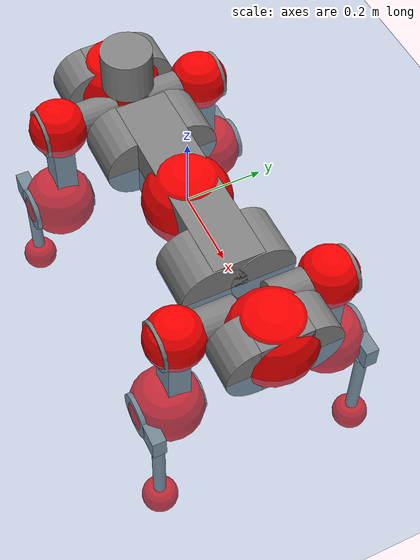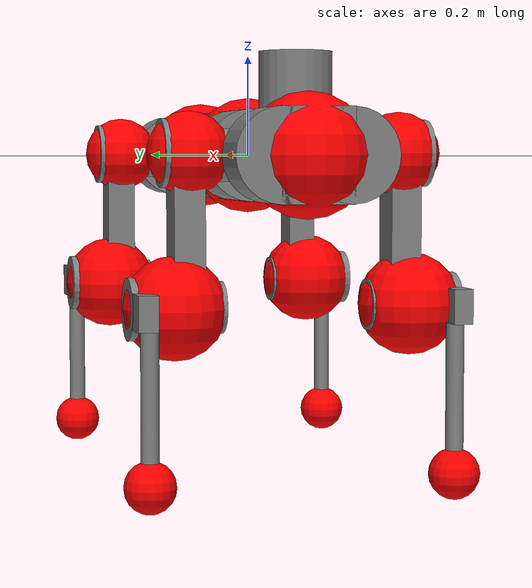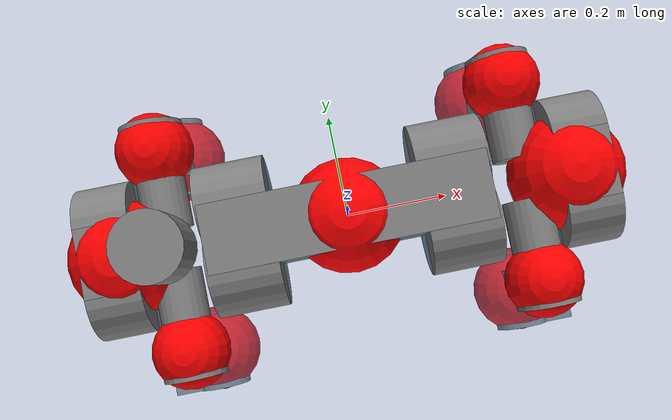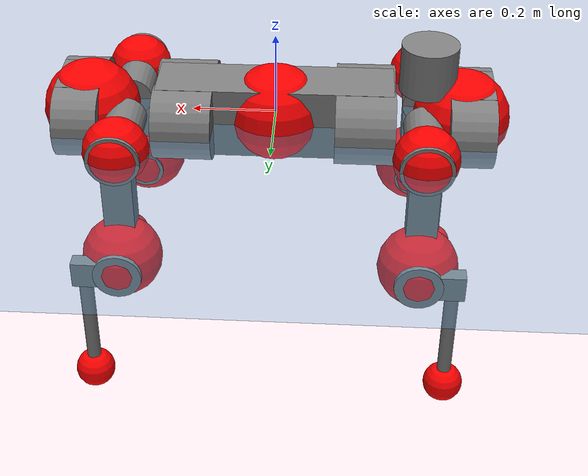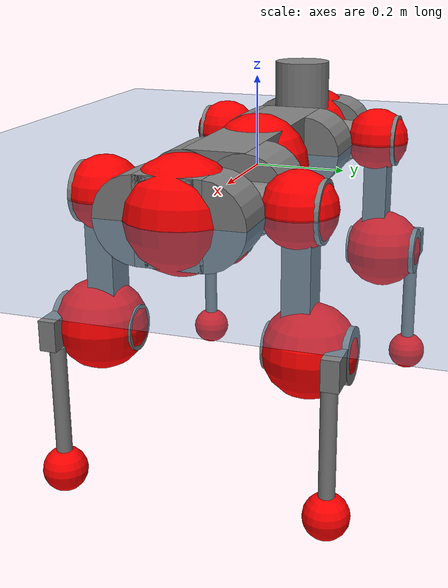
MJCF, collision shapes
<mujoco model="anymal_c">
  <compiler angle="radian" assetdir="assets" balanceinertia="true" inertiafromgeom="false"/>

  <option timestep="0.005" density="1.2" viscosity="2e-05"/>

  <size nkey="1"/>

  <visual>
    <quality shadowsize="8192"/>
    <map shadowclip="0.5"/>
  </visual>

  <default>
    <default class="/">
      <material specular="0" shininess="0.25"/>
      <geom contype="0" conaffinity="0" group="1" solref="-1000 -80"/>
      <site size="0.01 0.005 0.005" group="5"/>
      <general forcelimited="true" forcerange="-80 80" biastype="affine" gainprm="80" biasprm="0 -80 -2"/>
      <default class="anymal_c">
        <joint armature="0.01" damping="0.01" frictionloss="0.1"/>
        <default class="visual">
          <geom type="mesh" group="2"/>
          <default class="visual_zflip"/>
        </default>
        <default class="collision">
          <geom type="cylinder" group="3"/>
          <default class="foot">
            <geom size="0.03 0 0" type="sphere" condim="6" priority="1" friction="0.8 0.02 0.01" solimp="0.015 1 0.03"/>
          </default>
        </default>
      </default>
      <default class="reward_collision_sphere">
        <geom group="5" rgba="1 0 0 1"/>
      </default>
    </default>
  </default>

  <asset>
    <texture type="skybox" colorspace="auto" name="//unnamed_texture_0" builtin="gradient" rgb1="0.95 0.95 0.95" rgb2="0.95 0.95 0.95" width="100" height="600"/>
    <texture type="2d" colorspace="auto" name="texplane" builtin="checker" rgb1="0.345 0.575 0.748" rgb2="0.345 0.575 0.748" markrgb="1 1 1" width="512" height="512"/>
    <texture type="2d" colorspace="linear" name="base" file="base.png"/>
    <texture type="2d" colorspace="linear" name="top_shell" file="top_shell.png"/>
    <texture type="2d" colorspace="linear" name="bottom_shell" file="bottom_shell.png"/>
    <texture type="2d" colorspace="linear" name="remote" file="remote.png"/>
    <texture type="2d" colorspace="linear" name="hatch" file="hatch.png"/>
    <texture type="2d" colorspace="linear" name="handle" file="handle.png"/>
    <texture type="2d" colorspace="linear" name="face" file="face.png"/>
    <texture type="2d" colorspace="linear" name="battery" file="battery.png"/>
    <texture type="2d" colorspace="linear" name="lidar_cage" file="lidar_cage.png"/>
    <texture type="2d" colorspace="linear" name="depth_camera" file="depth_camera.png"/>
    <texture type="2d" colorspace="linear" name="wide_angle_camera" file="wide_angle_camera.png"/>
    <texture type="2d" colorspace="linear" name="lidar" file="lidar.png"/>
    <texture type="2d" colorspace="linear" name="drive" file="drive.png"/>
    <texture type="2d" colorspace="linear" name="hip_l" file="hip_l.png"/>
    <texture type="2d" colorspace="linear" name="shank_l" file="shank_l.png"/>
    <texture type="2d" colorspace="linear" name="foot" file="foot.png"/>
    <texture type="2d" colorspace="linear" name="thigh" file="thigh.png"/>
    <texture type="2d" colorspace="linear" name="shank_r" file="shank_r.png"/>
    <texture type="2d" colorspace="linear" name="hip_r" file="hip_r.png"/>
    <material name="MatPlane" class="/" texture="texplane" texuniform="true" texrepeat="2 2" specular="0.9" shininess="0.5"/>
    <material name="black_plastic" class="/" rgba="0.007 0.007 0.007 1"/>
    <material name="green" class="/" rgba="0.052 0.178 0.033 1"/>
    <material name="red" class="/" rgba="0.178 0.006 0.005 1"/>
    <material name="yellow" class="/" rgba="0.178 0.119 0.006 1"/>
    <material name="lwl" class="/" rgba="0.8 0.8 0.8 1"/>
    <material name="base" class="/" texture="base"/>
    <material name="top_shell" class="/" texture="top_shell"/>
    <material name="bottom_shell" class="/" texture="bottom_shell"/>
    <material name="hip_l" class="/" texture="hip_l"/>
    <material name="thigh" class="/" texture="thigh"/>
    <material name="shank_l" class="/" texture="shank_l"/>
    <material name="foot" class="/" texture="foot"/>
    <material name="hip_r" class="/" texture="hip_r"/>
    <material name="shank" class="/" texture="shank_r"/>
    <material name="hatch" class="/" texture="hatch"/>
    <material name="remote" class="/" texture="remote"/>
    <material name="handle" class="/" texture="handle"/>
    <material name="face" class="/" texture="face"/>
    <material name="depth_camera" class="/" texture="depth_camera"/>
    <material name="wide_angle_camera" class="/" texture="wide_angle_camera"/>
    <material name="battery" class="/" texture="battery"/>
    <material name="lidar_cage" class="/" texture="lidar_cage"/>
    <material name="lidar" class="/" texture="lidar"/>
    <material name="drive" class="/" texture="drive"/>
    <mesh name="base_0" class="/" file="base_0.obj"/>
    <mesh name="base_1" class="/" file="base_1.obj"/>
    <mesh name="base_2" class="/" file="base_2.obj"/>
    <mesh name="base_3" class="/" file="base_3.obj"/>
    <mesh name="base_4" class="/" file="base_4.obj"/>
    <mesh name="base_5" class="/" file="base_5.obj"/>
    <mesh name="top_shell" class="/" file="top_shell.obj"/>
    <mesh name="bottom_shell" class="/" file="bottom_shell.obj"/>
    <mesh name="remote" class="/" file="remote.obj"/>
    <mesh name="handle" class="/" file="handle.obj"/>
    <mesh name="face" class="/" file="face.obj"/>
    <mesh name="wide_angle_camera" class="/" file="wide_angle_camera.obj"/>
    <mesh name="depth_camera" class="/" file="depth_camera.obj"/>
    <mesh name="battery" class="/" file="battery.obj"/>
    <mesh name="lidar_cage" class="/" file="lidar_cage.obj"/>
    <mesh name="lidar" class="/" file="lidar.obj"/>
    <mesh name="drive" class="/" file="drive.obj"/>
    <mesh name="hip_l" class="/" file="hip_l.obj"/>
    <mesh name="thigh" class="/" file="thigh.obj"/>
    <mesh name="shank_l" class="/" file="shank_l.obj"/>
    <mesh name="foot" class="/" file="foot.obj"/>
    <mesh name="hip_r" class="/" file="hip_r.obj"/>
    <mesh name="hatch" class="/" file="hatch.obj"/>
    <mesh name="shank_r" class="/" file="shank_r.obj"/>
  </asset>

  <worldbody>
    <geom name="floor" class="/" size="100 100 0.125" type="plane" group="0" material="MatPlane"/>
    <light name="toplight_shadow" class="/" pos="0 0 5" dir="0.0990148 0.0990148 -0.990148" type="directional" ambient="0.04 0.04 0.04" diffuse="0.55 0.55 0.55" specular="0.12 0.12 0.12"/>
    <light name="toplight_fill" class="/" pos="0 0 5" dir="0.0990148 0.0990148 -0.990148" type="directional" castshadow="false" ambient="0.04 0.04 0.04" diffuse="0.3 0.3 0.3" specular="0.08 0.08 0.08"/>
    <body name="trunk" childclass="anymal_c" pos="0.000121934 0.000450907 -0.000166509" quat="1 -1.38251e-05 9.14508e-06 -1.64589e-05">
      <inertial pos="0.00262407 5.47002e-05 0.0483965" quat="0.501004 0.495008 0.499831 0.504114" mass="17.5854" diaginertia="0.605117 0.424442 0.210542"/>
      <joint name="//unnamed_joint_0" type="free" armature="0" damping="0" frictionloss="0"/>
      <geom name="//unnamed_geom_1" class="visual" material="green" mesh="base_0"/>
      <geom name="//unnamed_geom_2" class="visual" material="yellow" mesh="base_1"/>
      <geom name="//unnamed_geom_3" class="visual" material="red" mesh="base_2"/>
      <geom name="//unnamed_geom_4" class="visual" material="black_plastic" mesh="base_3"/>
      <geom name="//unnamed_geom_5" class="visual" material="lwl" mesh="base_4"/>
      <geom name="//unnamed_geom_6" class="visual" material="base" mesh="base_5"/>
      <geom name="trunk_1" class="collision" size="0.281107 0.0678533 0.08724" type="box"/>
      <geom name="trunk_2" class="collision" size="0.08724 0.0702767" pos="0.214906 0.0647533 0" quat="0.707107 0 0.707107 0"/>
      <geom name="trunk_3" class="collision" size="0.08724 0.0702767" pos="-0.214906 0.0647533 0" quat="0.707107 0 0.707107 0"/>
      <geom name="trunk_4" class="collision" size="0.08724 0.0702767" pos="0.214906 -0.0647533 0" quat="0.707107 0 0.707107 0"/>
      <geom name="trunk_5" class="collision" size="0.08724 0.0702767" pos="-0.214906 -0.0647533 0" quat="0.707107 0 0.707107 0"/>
      <geom name="//unnamed_geom_12" class="visual" material="top_shell" mesh="top_shell"/>
      <geom name="//unnamed_geom_13" class="visual" material="bottom_shell" mesh="bottom_shell"/>
      <geom name="//unnamed_geom_14" class="visual" material="remote" mesh="remote"/>
      <geom name="//unnamed_geom_15" class="visual" material="handle" mesh="handle"/>
      <geom name="//unnamed_geom_16" class="visual" pos="0.409556 0 0" quat="1 0 0 0" material="face" mesh="face"/>
      <geom name="trunk_6" class="collision" size="0.0533133 0.0678533 0.08724" pos="0.4639 0 0" type="box"/>
      <geom name="//unnamed_geom_18" class="collision" size="0.08724 0.0533133" pos="0.4639 0.0647533 0" quat="0.707107 0 0.707107 0"/>
      <geom name="//unnamed_geom_19" class="collision" size="0.08724 0.0533133" pos="0.4639 -0.0647533 0" quat="0.707107 0 0.707107 0"/>
      <geom name="//unnamed_geom_20" class="visual" pos="0.456144 0 -0.0291023" quat="0.965926 0 0.258819 0" material="depth_camera" mesh="depth_camera"/>
      <geom name="//unnamed_geom_21" class="visual" pos="0.506881 0 0.0148934" material="wide_angle_camera" mesh="wide_angle_camera"/>
      <geom name="//unnamed_geom_22" class="visual_zflip" pos="-0.409556 0 0" quat="0 0 0 1" material="face" mesh="face"/>
      <geom name="trunk_7" class="collision" size="0.0533133 0.0678533 0.08724" pos="-0.4639 0 0" quat="0 0 0 1" type="box"/>
      <geom name="//unnamed_geom_24" class="collision" size="0.08724 0.0533133" pos="-0.4639 -0.0647533 0" quat="0 -0.707107 0 0.707107"/>
      <geom name="//unnamed_geom_25" class="collision" size="0.08724 0.0533133" pos="-0.4639 0.0647533 0" quat="0 -0.707107 0 0.707107"/>
      <geom name="//unnamed_geom_26" class="visual" pos="-0.456144 0 -0.0291023" quat="0 -0.258819 0 0.965926" material="depth_camera" mesh="depth_camera"/>
      <geom name="//unnamed_geom_27" class="visual_zflip" pos="-0.506881 0 0.0148934" quat="0 0 0 1" material="wide_angle_camera" mesh="wide_angle_camera"/>
      <geom name="//unnamed_geom_28" class="visual" material="battery" mesh="battery"/>
      <geom name="//unnamed_geom_29" class="visual" pos="0 0.0699023 0.0288495" quat="0.683013 -0.183013 0.183013 0.683013" material="depth_camera" mesh="depth_camera"/>
      <geom name="//unnamed_geom_30" class="visual" pos="0 -0.0699023 0.0288495" quat="0.683013 0.183013 0.183013 -0.683013" material="depth_camera" mesh="depth_camera"/>
      <geom name="//unnamed_geom_31" class="visual" pos="-0.359658 0 0.0731237" quat="1 0 0 0" material="lidar_cage" mesh="lidar_cage"/>
      <geom name="trunk_8" class="collision" size="0.0678533 0.05816" pos="-0.359658 0 0.132817"/>
      <geom name="//unnamed_geom_33" class="visual" pos="-0.359658 -2.4761e-05 0.141472" quat="0.707107 0 0 -0.707107" material="lidar" mesh="lidar"/>
      <geom name="//unnamed_geom_34" class="visual" pos="0.296323 0.0962297 -1.20465e-09" quat="0.258819 0.965926 0 0" material="drive" mesh="drive"/>
      <geom name="//unnamed_geom_35" class="visual" pos="0.296323 -0.0962297 1.20465e-09" quat="0.258819 -0.965926 0 0" material="drive" mesh="drive"/>
      <geom name="//unnamed_geom_36" class="visual" pos="-0.296323 0.0962297 1.20465e-09" quat="0 0 0.965926 -0.258819" material="drive" mesh="drive"/>
      <geom name="//unnamed_geom_37" class="visual" pos="-0.296323 -0.0962297 -1.20465e-09" quat="0 0 -0.965926 -0.258819" material="drive" mesh="drive"/>
      <geom name="//unnamed_geom_38" class="visual" pos="0.114616 0 0.0726263" quat="1 0 0 0" material="hatch" mesh="hatch"/>
      <geom name="//unnamed_geom_39" class="reward_collision_sphere" size="0.11632"/>
      <geom name="//unnamed_geom_40" class="reward_collision_sphere" size="0.11632" pos="0.444632 0 0"/>
      <geom name="//unnamed_geom_41" class="reward_collision_sphere" size="0.11632" pos="-0.444632 0 0"/>
      <site name="imu" pos="0.243045 0.00307427 0.0483243" size="0.00969333"/>
      <camera name="track" pos="0 -1.85009 0" quat="0.707107 0.707107 0 0" mode="trackcom"/>
      <camera name="ego_camera" pos="0.444632 0 -0.0397952" quat="-0.5 -0.5 0.5 0.5"/>
      <body name="LF_HIP" pos="0.295878 0.0977939 0.000117807" quat="0.258805 0.96593 -4.28708e-05 0.000119743">
        <inertial pos="0.0557514 -0.0137619 -0.00890638" quat="-0.127928 0.709838 -0.135236 0.67932" mass="2.54721" diaginertia="0.00551183 0.0033717 0.00322671"/>
        <joint name="LF_HAA" pos="0 0 0" axis="0.999998 -0.00175901 2.52315e-06" range="-0.693347 0.473214" armature="0.00988817" damping="0.00942638" frictionloss="0.0929017"/>
        <geom name="//unnamed_geom_42" class="visual" pos="0 -7.0864e-05 1.16394e-05" quat="0.258819 -0.965926 0 0" material="hip_l" mesh="hip_l"/>
        <geom name="//unnamed_geom_43" class="visual" pos="0.0591855 -0.0709108 -0.0414569" quat="0.183013 -0.683013 0.683013 0.183013" material="drive" mesh="drive"/>
        <geom name="//unnamed_geom_44" class="collision" size="0.0484667 0.0678533" pos="0.0591855 -0.0110634 -0.00686965" quat="-0.353553 -0.612372 0.612372 -0.353553"/>
        <body name="LF_THIGH" pos="0.0594002 -0.0665473 -0.0414624" quat="0.182661 -0.683212 0.682907 0.183015">
          <inertial pos="0.0299759 -0.000822078 -0.243972" quat="0.993205 -0.00517279 -0.0803423 0.0840405" mass="2.79625" diaginertia="0.0283607 0.0201907 0.00406053"/>
          <joint name="LF_HFE" pos="0 0 0" axis="1 -0.000213001 0.000166894" stiffness="0.00232973" range="-3.15693 3.14829" armature="0.00958372" damping="0.0114157" frictionloss="0.0952993"/>
          <geom name="//unnamed_geom_45" class="visual" pos="0.00125396 1.97595e-06 0" quat="0.707107 0 0 -0.707107" material="thigh" mesh="thigh"/>
          <geom name="//unnamed_geom_46" class="collision" size="0.0630067 0.0387733" pos="0.0395229 0 0" quat="0.5 0.5 -0.5 -0.5"/>
          <geom name="//unnamed_geom_47" class="collision" size="0.03635 0.02908 0.13698" pos="0.0296422 0 -0.140591" quat="0.707107 0 0 -0.707107" type="box"/>
          <geom name="//unnamed_geom_48" class="visual" pos="0.0991036 0 -0.283541" quat="1 0 0 0" material="drive" mesh="drive"/>
          <geom name="//unnamed_geom_49" class="collision" size="0.0484667 0.0678533" pos="0.0299386 0 -0.283541" quat="0.707107 0 0.707107 0"/>
          <geom name="//unnamed_geom_50" class="reward_collision_sphere" size="0.0775467" pos="0.0247018 0 0"/>
          <body name="LF_SHANK" pos="0.0992704 -0.0010014 -0.283359" quat="1 -4.50099e-05 0.000366194 0.000175776">
            <inertial pos="0.00450294 -0.0566768 -0.081262" quat="0.992983 -0.115569 -0.00153514 -0.0250409" mass="0.534304" diaginertia="0.0096247 0.00630709 0.00107849"/>
            <joint name="LF_KFE" pos="0 0 0" axis="1 0.000724599 -0.00050967" range="-3.15898 3.1421" armature="0.0101739" damping="0.00933138" frictionloss="0.0965258"/>
            <geom name="//unnamed_geom_51" class="visual" pos="0.000408889 0.00218022 0" quat="0.707107 0 0 -0.707107" material="shank_l" mesh="shank_l"/>
            <geom name="LF_kfe_act" class="collision" size="0.05816 0.0193867" pos="0.0197614 0 0" quat="0.5 0.5 -0.5 -0.5"/>
            <geom name="//unnamed_geom_53" class="collision" size="0.0557357 0.032715 0.0184173" pos="0.0197614 -0.0531893 0" quat="0.5 0.5 -0.5 -0.5" type="box"/>
            <geom name="//unnamed_geom_54" class="visual" pos="0.0128942 -0.0806553 -0.33624" quat="0.382683 0 0 -0.92388" material="foot" mesh="foot"/>
            <geom name="LF_calf" class="collision" size="0.0169633 0.13692" pos="0.0128943 -0.0813578 -0.16812" quat="0.707107 0 0 -0.707107"/>
            <geom name="LF_foot" class="foot" size="0.0298119" pos="0.0128943 -0.0813578 -0.313855" quat="0.707107 0 0 -0.707107"/>
            <geom name="//unnamed_geom_57" class="reward_collision_sphere" size="0.0969333" pos="-0.0494036 0 0"/>
            <geom name="//unnamed_geom_58" class="reward_collision_sphere" size="0.0484667" pos="0.0128943 -0.0813578 -0.313855"/>
            <site name="LF_foot" class="foot" pos="0.0128943 -0.0813578 -0.313855" quat="0.707107 0 0 -0.707107" size="0.00969333"/>
          </body>
        </body>
      </body>
      <body name="RF_HIP" pos="0.296492 -0.0959721 0.00136952" quat="0.258712 -0.965954 0.000132943 -1.87393e-05">
        <inertial pos="0.0563188 0.0149647 -0.00787302" quat="0.134577 0.679132 0.126588 0.710383" mass="2.52089" diaginertia="0.00549652 0.0032688 0.00318435"/>
        <joint name="RF_HAA" pos="0 0 0" axis="0.999997 -0.00063911 -0.00237424" range="-0.490291 0.719067" armature="0.0097455" damping="0.010162" frictionloss="0.0960146"/>
        <geom name="//unnamed_geom_59" class="visual" pos="0 7.08635e-05 1.16393e-05" quat="0.258819 0.965926 0 0" material="hip_r" mesh="hip_r"/>
        <geom name="//unnamed_geom_60" class="visual" pos="0.0591855 0.0709108 -0.0414569" quat="0.183013 0.683013 0.683013 -0.183013" material="drive" mesh="drive"/>
        <geom name="//unnamed_geom_61" class="collision" size="0.0484667 0.0678533" pos="0.0591855 0.0110634 -0.00686965" quat="-0.353553 0.612372 0.612372 0.353553"/>
        <body name="RF_THIGH" pos="0.0601046 0.0684741 -0.0432128" quat="0.183129 0.68274 0.683164 -0.183347">
          <inertial pos="0.0313271 -0.00117843 -0.243913" quat="0.993092 -0.00142737 -0.0797223 0.0860856" mass="2.7659" diaginertia="0.0283419 0.0202236 0.00409018"/>
          <joint name="RF_HFE" pos="0 0 0" axis="0.999997 0.000923199 0.00209553" stiffness="0.00406974" range="-3.15529 3.13795" armature="0.00970211" damping="0.0116267" frictionloss="0.0969169"/>
          <geom name="//unnamed_geom_62" class="visual" pos="0.00125396 1.97595e-06 0" quat="0.707107 0 0 -0.707107" material="thigh" mesh="thigh"/>
          <geom name="//unnamed_geom_63" class="collision" size="0.0630067 0.0387733" pos="0.0395229 0 0" quat="0.5 0.5 0.5 0.5"/>
          <geom name="//unnamed_geom_64" class="collision" size="0.03635 0.02908 0.13698" pos="0.0296422 0 -0.140591" quat="0.707107 0 0 0.707107" type="box"/>
          <geom name="//unnamed_geom_65" class="visual" pos="0.0991036 0 -0.283541" quat="1 0 0 0" material="drive" mesh="drive"/>
          <geom name="//unnamed_geom_66" class="collision" size="0.0484667 0.0678533" pos="0.0299386 0 -0.283541" quat="0.707107 0 0.707107 0"/>
          <geom name="//unnamed_geom_67" class="reward_collision_sphere" size="0.0775467" pos="0.0247018 0 0"/>
          <body name="RF_SHANK" pos="0.0982606 0.000559843 -0.282588" quat="1 3.19952e-05 2.99377e-06 1.49042e-05">
            <inertial pos="0.0050914 0.0565368 -0.0808369" quat="0.992539 0.119723 -0.000259099 0.0230779" mass="0.53462" diaginertia="0.00962878 0.00625219 0.00109098"/>
            <joint name="RF_KFE" pos="0 0 0" axis="0.999975 -0.00347287 -0.00623277" range="-3.12548 3.13751" armature="0.00997057" damping="0.0106324" frictionloss="0.0969616"/>
            <geom name="//unnamed_geom_68" class="visual" pos="0.000408887 -0.00218021 0" quat="0.707107 0 0 0.707107" material="shank" mesh="shank_r"/>
            <geom name="RF_kfe_act" class="collision" size="0.05816 0.0193867" pos="0.0197614 0 0" quat="0.5 0.5 0.5 0.5"/>
            <geom name="//unnamed_geom_70" class="collision" size="0.0557357 0.032715 0.0184173" pos="0.0197614 0.0531893 0" quat="0.5 0.5 0.5 0.5" type="box"/>
            <geom name="//unnamed_geom_71" class="visual" pos="0.0128944 0.0806553 -0.33624" quat="0.382683 0 0 0.92388" material="foot" mesh="foot"/>
            <geom name="RF_calf" class="collision" size="0.0169633 0.13692" pos="0.0128943 0.0813578 -0.16812" quat="0.707107 0 0 0.707107"/>
            <geom name="RF_foot" class="foot" size="0.0305505" pos="0.0128943 0.0813578 -0.313855" quat="0.707107 0 0 0.707107"/>
            <geom name="//unnamed_geom_74" class="reward_collision_sphere" size="0.0969333" pos="-0.0494036 0 0"/>
            <geom name="//unnamed_geom_75" class="reward_collision_sphere" size="0.0484667" pos="0.0128943 0.0813578 -0.313855"/>
            <site name="RF_foot" class="foot" pos="0.0128943 0.0813578 -0.313855" quat="0.707107 0 0 0.707107" size="0.00969333"/>
          </body>
        </body>
      </body>
      <body name="LH_HIP" pos="-0.295218 0.097038 -0.00031982" quat="-0.000130801 0.00013363 0.96591 -0.25888">
        <inertial pos="0.0562794 0.0140911 -0.00919745" quat="0.135682 0.679387 0.128422 0.7096" mass="2.51962" diaginertia="0.00547235 0.00330872 0.00318445"/>
        <joint name="LH_HAA" pos="0 0 0" axis="1 -0.000699191 -0.000703775" range="-0.48382 0.731561" armature="0.0096952" damping="0.00726336" frictionloss="0.0994502"/>
        <geom name="//unnamed_geom_76" class="visual" pos="0 7.08635e-05 1.16393e-05" quat="-0.258819 -0.965926 0 0" material="hip_r" mesh="hip_r"/>
        <geom name="//unnamed_geom_77" class="visual" pos="0.0591855 0.0709108 -0.0414569" quat="0.183013 0.683013 0.683013 -0.183013" material="drive" mesh="drive"/>
        <geom name="//unnamed_geom_78" class="collision" size="0.0484667 0.0678533" pos="0.0591855 0.0110634 -0.00686965" quat="-0.353553 0.612372 0.612372 0.353553"/>
        <body name="LH_THIGH" pos="0.0593834 0.0666885 -0.0432416" quat="0.182782 0.682872 0.683234 -0.182942">
          <inertial pos="0.0305676 -0.000214443 -0.24497" quat="0.993086 -0.00599115 -0.0815744 0.0841972" mass="2.82741" diaginertia="0.0282582 0.0200202 0.00406988"/>
          <joint name="LH_HFE" pos="0 0 0" axis="0.999996 -0.000792439 0.00269881" range="-3.13461 3.12137" armature="0.00986675" damping="0.0075578" frictionloss="0.0975199"/>
          <geom name="//unnamed_geom_79" class="visual" pos="0.00125396 1.97595e-06 0" quat="0.707107 0 0 -0.707107" material="thigh" mesh="thigh"/>
          <geom name="//unnamed_geom_80" class="collision" size="0.0630067 0.0387733" pos="0.0395229 0 0" quat="0.5 0.5 -0.5 -0.5"/>
          <geom name="//unnamed_geom_81" class="collision" size="0.03635 0.02908 0.13698" pos="0.0296422 0 -0.140591" quat="0.707107 0 0 -0.707107" type="box"/>
          <geom name="//unnamed_geom_82" class="visual" pos="0.0991036 0 -0.283541" quat="1 0 0 0" material="drive" mesh="drive"/>
          <geom name="//unnamed_geom_83" class="collision" size="0.0484667 0.0678533" pos="0.0299386 0 -0.283541" quat="0.707107 0 0.707107 0"/>
          <geom name="//unnamed_geom_84" class="reward_collision_sphere" size="0.0775467" pos="0.0247018 0 0"/>
          <body name="LH_SHANK" pos="0.100106 -0.00211595 -0.284219" quat="1 -0.000243273 -0.00010908 -0.000113356">
            <inertial pos="0.00557523 0.0565321 -0.0806719" quat="0.992909 0.115804 -0.00166544 0.0268086" mass="0.523611" diaginertia="0.00947243 0.00620917 0.0010798"/>
            <joint name="LH_KFE" pos="0 0 0" axis="1 1.13133e-05 -1.35417e-06" range="-3.1255 3.15019" armature="0.00966235" damping="0.0133425" frictionloss="0.0960248"/>
            <geom name="//unnamed_geom_85" class="visual" pos="0.000408887 -0.00218021 0" quat="-0.707107 0 0 -0.707107" material="shank" mesh="shank_r"/>
            <geom name="LH_kfe_act" class="collision" size="0.05816 0.0193867" pos="0.0197614 0 0" quat="0.5 0.5 -0.5 -0.5"/>
            <geom name="//unnamed_geom_87" class="collision" size="0.0557357 0.032715 0.0184173" pos="0.0197614 0.0531893 0" quat="0.5 0.5 -0.5 -0.5" type="box"/>
            <geom name="//unnamed_geom_88" class="visual" pos="0.0128944 0.0806553 -0.33624" quat="-0.382683 0 0 -0.92388" material="foot" mesh="foot"/>
            <geom name="LH_calf" class="collision" size="0.0169633 0.13692" pos="0.0128943 0.0813578 -0.16812" quat="0.707107 0 0 -0.707107"/>
            <geom name="LH_foot" class="foot" size="0.0296701" pos="0.0128943 0.0813578 -0.313855" quat="0.707107 0 0 -0.707107"/>
            <geom name="//unnamed_geom_91" class="reward_collision_sphere" size="0.0969333" pos="-0.0494036 0 0"/>
            <geom name="//unnamed_geom_92" class="reward_collision_sphere" size="0.0484667" pos="0.0128943 0.0813578 -0.313855"/>
            <site name="LH_foot" class="foot" pos="0.0128943 0.0813578 -0.313855" quat="0.707107 0 0 -0.707107" size="0.00969333"/>
          </body>
        </body>
      </body>
      <body name="RH_HIP" pos="-0.295847 -0.097473 0.000588347" quat="0.000123216 -5.85815e-07 -0.965964 -0.258676">
        <inertial pos="0.0563017 -0.0142915 -0.00761324" quat="-0.128635 0.71001 -0.137028 0.678647" mass="2.49533" diaginertia="0.00541464 0.00327889 0.00318997"/>
        <joint name="RH_HAA" pos="0 0 0" axis="1 0.000466262 -0.000459059" range="-0.728725 0.483749" armature="0.00972524" damping="0.00856586" frictionloss="0.096905"/>
        <geom name="//unnamed_geom_93" class="visual" pos="0 -7.0864e-05 1.16394e-05" quat="-0.258819 0.965926 0 0" material="hip_l" mesh="hip_l"/>
        <geom name="//unnamed_geom_94" class="visual" pos="0.0591855 -0.0709108 -0.0414569" quat="-0.183013 0.683013 -0.683013 -0.183013" material="drive" mesh="drive"/>
        <geom name="//unnamed_geom_95" class="collision" size="0.0484667 0.0678533" pos="0.0591855 -0.0110634 -0.00686965" quat="0.353553 0.612372 -0.612372 0.353553"/>
        <body name="RH_THIGH" pos="0.058676 -0.0677599 -0.0423493" quat="-0.183045 0.682896 -0.683049 -0.183281">
          <inertial pos="0.0306063 -0.000516973 -0.245166" quat="0.993317 -0.003942 -0.0810023 0.0821247" mass="2.81995" diaginertia="0.0287435 0.0204513 0.00412564"/>
          <joint name="RH_HFE" pos="0 0 0" axis="0.999998 -0.00198238 -0.000801436" stiffness="0.00128362" range="-3.13041 3.12421" armature="0.0098656" damping="0.00627952" frictionloss="0.0993311"/>
          <geom name="//unnamed_geom_96" class="visual" pos="0.00125396 1.97595e-06 0" quat="0.707107 0 0 -0.707107" material="thigh" mesh="thigh"/>
          <geom name="//unnamed_geom_97" class="collision" size="0.0630067 0.0387733" pos="0.0395229 0 0" quat="0.5 0.5 0.5 0.5"/>
          <geom name="//unnamed_geom_98" class="collision" size="0.03635 0.02908 0.13698" pos="0.0296422 0 -0.140591" quat="0.707107 0 0 0.707107" type="box"/>
          <geom name="//unnamed_geom_99" class="visual" pos="0.0991036 0 -0.283541" quat="1 0 0 0" material="drive" mesh="drive"/>
          <geom name="//unnamed_geom_100" class="collision" size="0.0484667 0.0678533" pos="0.0299386 0 -0.283541" quat="0.707107 0 0.707107 0"/>
          <geom name="//unnamed_geom_101" class="reward_collision_sphere" size="0.0775467" pos="0.0247018 0 0"/>
          <body name="RH_SHANK" pos="0.0970954 0.000799138 -0.283194" quat="1 0.000219668 0.000258828 -0.000318381">
            <inertial pos="0.00678867 -0.0565284 -0.0804409" quat="0.992871 -0.116157 0.000361512 -0.0267454" mass="0.539423" diaginertia="0.00964797 0.00626254 0.00110072"/>
            <joint name="RH_KFE" pos="0 0 0" axis="0.999997 0.00127621 0.00207657" range="-3.11908 3.14649" armature="0.00950061" damping="0.00832788" frictionloss="0.0978989"/>
            <geom name="//unnamed_geom_102" class="visual" pos="0.000408889 0.00218022 0" quat="0.707107 0 0 -0.707107" material="shank_l" mesh="shank_l"/>
            <geom name="RH_kfe_act" class="collision" size="0.05816 0.0193867" pos="0.0197614 0 0" quat="0.5 0.5 0.5 0.5"/>
            <geom name="//unnamed_geom_104" class="collision" size="0.0557357 0.032715 0.0184173" pos="0.0197614 -0.0531893 0" quat="0.5 0.5 0.5 0.5" type="box"/>
            <geom name="//unnamed_geom_105" class="visual" pos="0.0128942 -0.0806553 -0.33624" quat="0.382683 0 0 -0.92388" material="foot" mesh="foot"/>
            <geom name="RH_calf" class="collision" size="0.0169633 0.13692" pos="0.0128943 -0.0813578 -0.16812" quat="0.707107 0 0 0.707107"/>
            <geom name="RH_foot" class="foot" size="0.0288377" pos="0.0128943 -0.0813578 -0.313855" quat="0.707107 0 0 0.707107"/>
            <geom name="//unnamed_geom_108" class="reward_collision_sphere" size="0.0969333" pos="-0.0494036 0 0"/>
            <geom name="//unnamed_geom_109" class="reward_collision_sphere" size="0.0484667" pos="0.0128943 -0.0813578 -0.313855"/>
            <site name="RH_foot" class="foot" pos="0.0128943 -0.0813578 -0.313855" quat="0.707107 0 0 0.707107" size="0.00969333"/>
          </body>
        </body>
      </body>
    </body>
  </worldbody>

  <contact>
    <pair class="/" geom1="floor" geom2="LF_foot" name="//unnamed_contact_0"/>
    <pair class="/" geom1="floor" geom2="RF_foot" name="//unnamed_contact_1"/>
    <pair class="/" geom1="floor" geom2="LH_foot" name="//unnamed_contact_2"/>
    <pair class="/" geom1="floor" geom2="RH_foot" name="//unnamed_contact_3"/>
  </contact>

  <actuator>
    <general name="LF_HAA" class="/" joint="LF_HAA" forcerange="-82.2941 82.2941" gainprm="78.2566" biasprm="0 -78.2566 -1.86454"/>
    <general name="LF_HFE" class="/" joint="LF_HFE" forcerange="-80.408 80.408" gainprm="78.2566" biasprm="0 -78.2566 -1.86454"/>
    <general name="LF_KFE" class="/" joint="LF_KFE" forcerange="-76.1835 76.1835" gainprm="78.2566" biasprm="0 -78.2566 -1.86454"/>
    <general name="RF_HAA" class="/" joint="RF_HAA" forcerange="-80.1865 80.1865" gainprm="78.2566" biasprm="0 -78.2566 -1.86454"/>
    <general name="RF_HFE" class="/" joint="RF_HFE" forcerange="-81.2305 81.2305" gainprm="78.2566" biasprm="0 -78.2566 -1.86454"/>
    <general name="RF_KFE" class="/" joint="RF_KFE" forcerange="-75.443 75.443" gainprm="78.2566" biasprm="0 -78.2566 -1.86454"/>
    <general name="LH_HAA" class="/" joint="LH_HAA" forcerange="-76.8024 76.8024" gainprm="78.2566" biasprm="0 -78.2566 -1.86454"/>
    <general name="LH_HFE" class="/" joint="LH_HFE" forcerange="-79.4233 79.4233" gainprm="78.2566" biasprm="0 -78.2566 -1.86454"/>
    <general name="LH_KFE" class="/" joint="LH_KFE" forcerange="-80.52 80.52" gainprm="78.2566" biasprm="0 -78.2566 -1.86454"/>
    <general name="RH_HAA" class="/" joint="RH_HAA" forcerange="-75.756 75.756" gainprm="78.2566" biasprm="0 -78.2566 -1.86454"/>
    <general name="RH_HFE" class="/" joint="RH_HFE" forcerange="-77.3304 77.3304" gainprm="78.2566" biasprm="0 -78.2566 -1.86454"/>
    <general name="RH_KFE" class="/" joint="RH_KFE" forcerange="-77.8589 77.8589" gainprm="78.2566" biasprm="0 -78.2566 -1.86454"/>
  </actuator>

  <sensor>
    <gyro site="imu" name="imu_angular_velocity"/>
    <velocimeter site="imu" name="imu_linear_velocity"/>
    <framelinvel objtype="site" objname="LF_foot" name="LF_foot_global_linear_velocity"/>
    <framelinvel objtype="site" objname="RF_foot" name="RF_foot_global_linear_velocity"/>
    <framelinvel objtype="site" objname="LH_foot" name="LH_foot_global_linear_velocity"/>
    <framelinvel objtype="site" objname="RH_foot" name="RH_foot_global_linear_velocity"/>
  </sensor>

  <keyframe>
    <key name="home" qpos="0 0 0.55 1 0 0 0 0 0.4 -0.8 0 -0.4 0.8 0 -0.4 0.8 0 0.4 -0.8"/>
  </keyframe>
</mujoco>
